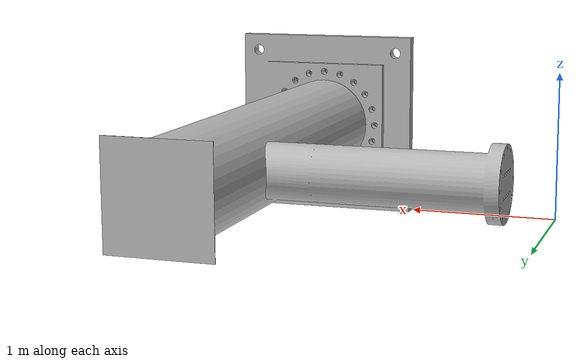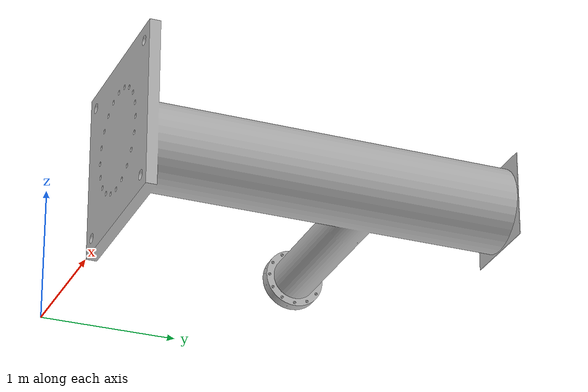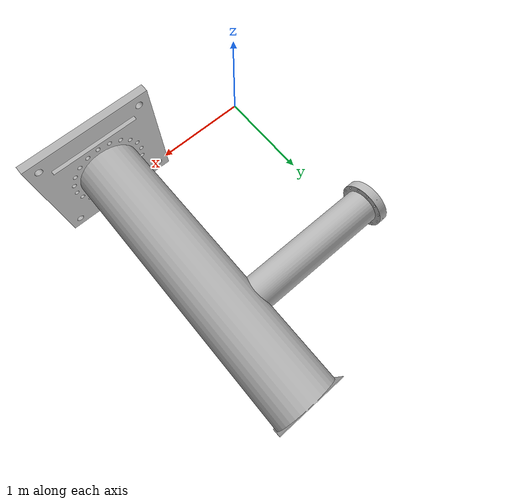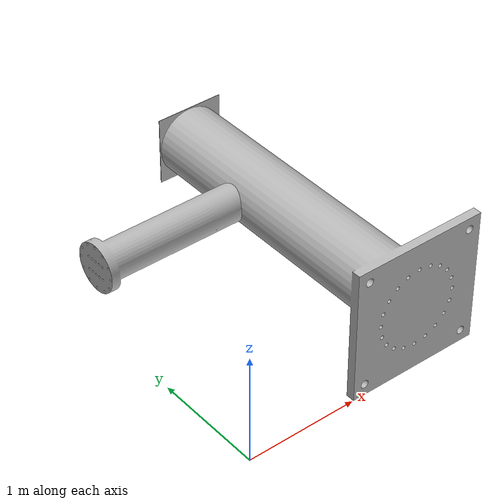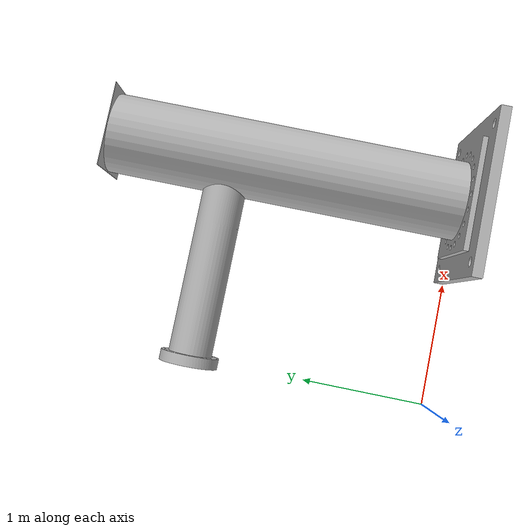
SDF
<?xml version="1.0" ?>
<sdf version="1.5">
  <model name="ce_jacket">
    <static>0</static>
      <!-- Offset the visual by have the base's height. We are not rotating
           mesh since symmetrical -->
      <link name="link">
        <inertial>
          <pose>0 0 0 0 0 0</pose>
          <mass>100.0</mass>
          <inertia>
            <ixx>-0.482946373</ixx>
            <ixy>0</ixy>
            <ixz>0</ixz>
            <iyy>0.1141818467</iyy>
            <iyz>0</iyz>
            <izz>0.658872094</izz>
          </inertia>

        </inertial>
    <collision name='collision'>
      <geometry>
        <mesh>
          <uri>model://ce_jacket/meshes/ce_jacket_reduced_v3.dae</uri>
        </mesh>
      </geometry>
    </collision>
        <visual name='visual'>
          <geometry>
            <mesh>
              <uri>model://ce_jacket/meshes/ce_jacket_reduced_v3.dae</uri>
            </mesh>
          </geometry>
        </visual>
  </link>
  </model>
</sdf>
